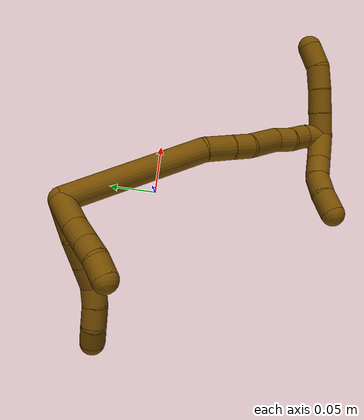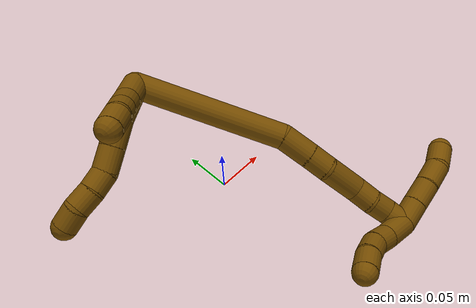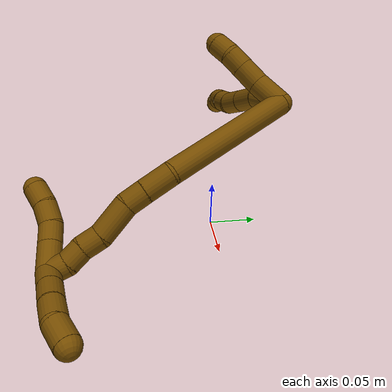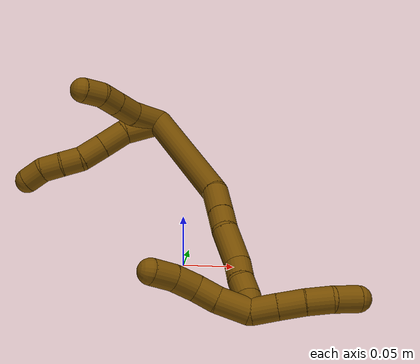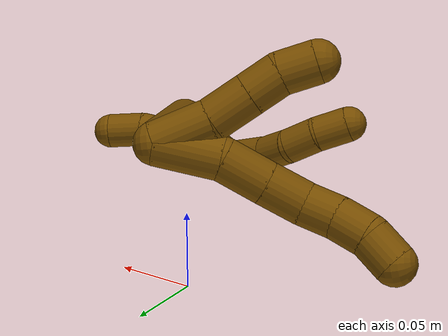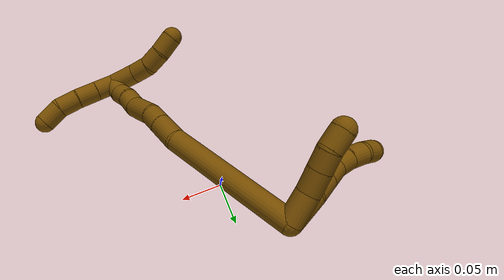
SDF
<sdf version="1.7">
 <world name="default">
  <model name="12">
   <static>0</static>
   <link name="12">
    <collision name="collision-cylinder-e_1_2_8">
     <pose>-0.007347 -0.002799 0.017239 0.160949 -0.398202 -0.032543</pose>
     <geometry><cylinder><radius>0.0125</radius><length>0.037894</length></cylinder></geometry>
     <surface>
      <friction><ode><mu>1.16</mu><mu2>1.16</mu2><slip1>0</slip1><slip2>0</slip2></ode></friction>
      <contact><ode><kp>1e+06</kp><kd>1</kd><max_vel>0</max_vel><min_depth>0.001</min_depth></ode></contact>
     </surface>
    </collision>
    <visual name="visual-cylinder-e_1_2_8">
     <pose>-0.007347 -0.002799 0.017239 0.160949 -0.398202 -0.032543</pose>
     <geometry><cylinder><radius>0.0125</radius><length>0.037894</length></cylinder></geometry>
     <material><ambient>0.466667 0.301961 0 1</ambient></material>
    </visual>
    <collision name="collision-cylinder-e_2_8_9">
     <pose>-0.023451 -0.007887 0.044532 0.223847 -0.704052 -0.082523</pose>
     <geometry><cylinder><radius>0.0125</radius><length>0.027057</length></cylinder></geometry>
     <surface>
      <friction><ode><mu>1.16</mu><mu2>1.16</mu2><slip1>0</slip1><slip2>0</slip2></ode></friction>
      <contact><ode><kp>1e+06</kp><kd>1</kd><max_vel>0</max_vel><min_depth>0.001</min_depth></ode></contact>
     </surface>
    </collision>
    <visual name="visual-cylinder-e_2_8_9">
     <pose>-0.023451 -0.007887 0.044532 0.223847 -0.704052 -0.082523</pose>
     <geometry><cylinder><radius>0.0125</radius><length>0.027057</length></cylinder></geometry>
     <material><ambient>0.466667 0.301961 0 1</ambient></material>
    </visual>
    <collision name="collision-cylinder-e_3_9_10">
     <pose>-0.039916 -0.012231 0.063769 0.220218 -0.686289 -0.078958</pose>
     <geometry><cylinder><radius>0.0125</radius><length>0.024328</length></cylinder></geometry>
     <surface>
      <friction><ode><mu>1.16</mu><mu2>1.16</mu2><slip1>0</slip1><slip2>0</slip2></ode></friction>
      <contact><ode><kp>1e+06</kp><kd>1</kd><max_vel>0</max_vel><min_depth>0.001</min_depth></ode></contact>
     </surface>
    </collision>
    <visual name="visual-cylinder-e_3_9_10">
     <pose>-0.039916 -0.012231 0.063769 0.220218 -0.686289 -0.078958</pose>
     <geometry><cylinder><radius>0.0125</radius><length>0.024328</length></cylinder></geometry>
     <material><ambient>0.466667 0.301961 0 1</ambient></material>
    </visual>
    <collision name="collision-cylinder-e_4_10_11">
     <pose>-0.052397 -0.01342 0.081701 -0.098711 -0.497363 0.025086</pose>
     <geometry><cylinder><radius>0.0125</radius><length>0.020007</length></cylinder></geometry>
     <surface>
      <friction><ode><mu>1.16</mu><mu2>1.16</mu2><slip1>0</slip1><slip2>0</slip2></ode></friction>
      <contact><ode><kp>1e+06</kp><kd>1</kd><max_vel>0</max_vel><min_depth>0.001</min_depth></ode></contact>
     </surface>
    </collision>
    <visual name="visual-cylinder-e_4_10_11">
     <pose>-0.052397 -0.01342 0.081701 -0.098711 -0.497363 0.025086</pose>
     <geometry><cylinder><radius>0.0125</radius><length>0.020007</length></cylinder></geometry>
     <material><ambient>0.466667 0.301961 0 1</ambient></material>
    </visual>
    <collision name="collision-cylinder-e_5_11_12">
     <pose>-0.062527 -0.010089 0.098839 -0.285717 -0.549773 0.081088</pose>
     <geometry><cylinder><radius>0.0125</radius><length>0.02051</length></cylinder></geometry>
     <surface>
      <friction><ode><mu>1.16</mu><mu2>1.16</mu2><slip1>0</slip1><slip2>0</slip2></ode></friction>
      <contact><ode><kp>1e+06</kp><kd>1</kd><max_vel>0</max_vel><min_depth>0.001</min_depth></ode></contact>
     </surface>
    </collision>
    <visual name="visual-cylinder-e_5_11_12">
     <pose>-0.062527 -0.010089 0.098839 -0.285717 -0.549773 0.081088</pose>
     <geometry><cylinder><radius>0.0125</radius><length>0.02051</length></cylinder></geometry>
     <material><ambient>0.466667 0.301961 0 1</ambient></material>
    </visual>
    <collision name="collision-cylinder-e_6_12_6">
     <pose>-0.075682 -0.005427 0.113265 -0.349163 -0.881589 0.16603</pose>
     <geometry><cylinder><radius>0.0125</radius><length>0.020205</length></cylinder></geometry>
     <surface>
      <friction><ode><mu>1.16</mu><mu2>1.16</mu2><slip1>0</slip1><slip2>0</slip2></ode></friction>
      <contact><ode><kp>1e+06</kp><kd>1</kd><max_vel>0</max_vel><min_depth>0.001</min_depth></ode></contact>
     </surface>
    </collision>
    <visual name="visual-cylinder-e_6_12_6">
     <pose>-0.075682 -0.005427 0.113265 -0.349163 -0.881589 0.16603</pose>
     <geometry><cylinder><radius>0.0125</radius><length>0.020205</length></cylinder></geometry>
     <material><ambient>0.466667 0.301961 0 1</ambient></material>
    </visual>
    <collision name="collision-cylinder-e_1_2_13">
     <pose>0.003392 -0.004656 0.015639 0.289345 0.204973 0.029965</pose>
     <geometry><cylinder><radius>0.0125</radius><length>0.033333</length></cylinder></geometry>
     <surface>
      <friction><ode><mu>1.16</mu><mu2>1.16</mu2><slip1>0</slip1><slip2>0</slip2></ode></friction>
      <contact><ode><kp>1e+06</kp><kd>1</kd><max_vel>0</max_vel><min_depth>0.001</min_depth></ode></contact>
     </surface>
    </collision>
    <visual name="visual-cylinder-e_1_2_13">
     <pose>0.003392 -0.004656 0.015639 0.289345 0.204973 0.029965</pose>
     <geometry><cylinder><radius>0.0125</radius><length>0.033333</length></cylinder></geometry>
     <material><ambient>0.466667 0.301961 0 1</ambient></material>
    </visual>
    <collision name="collision-cylinder-e_2_13_14">
     <pose>0.011589 -0.013366 0.0421 0.358493 0.394025 0.072301</pose>
     <geometry><cylinder><radius>0.0125</radius><length>0.025032</length></cylinder></geometry>
     <surface>
      <friction><ode><mu>1.16</mu><mu2>1.16</mu2><slip1>0</slip1><slip2>0</slip2></ode></friction>
      <contact><ode><kp>1e+06</kp><kd>1</kd><max_vel>0</max_vel><min_depth>0.001</min_depth></ode></contact>
     </surface>
    </collision>
    <visual name="visual-cylinder-e_2_13_14">
     <pose>0.011589 -0.013366 0.0421 0.358493 0.394025 0.072301</pose>
     <geometry><cylinder><radius>0.0125</radius><length>0.025032</length></cylinder></geometry>
     <material><ambient>0.466667 0.301961 0 1</ambient></material>
    </visual>
    <collision name="collision-cylinder-e_3_14_15">
     <pose>0.020277 -0.020719 0.061627 0.362139 0.395164 0.073268</pose>
     <geometry><cylinder><radius>0.0125</radius><length>0.020171</length></cylinder></geometry>
     <surface>
      <friction><ode><mu>1.16</mu><mu2>1.16</mu2><slip1>0</slip1><slip2>0</slip2></ode></friction>
      <contact><ode><kp>1e+06</kp><kd>1</kd><max_vel>0</max_vel><min_depth>0.001</min_depth></ode></contact>
     </surface>
    </collision>
    <visual name="visual-cylinder-e_3_14_15">
     <pose>0.020277 -0.020719 0.061627 0.362139 0.395164 0.073268</pose>
     <geometry><cylinder><radius>0.0125</radius><length>0.020171</length></cylinder></geometry>
     <material><ambient>0.466667 0.301961 0 1</ambient></material>
    </visual>
    <collision name="collision-cylinder-e_4_15_5">
     <pose>0.025502 -0.026561 0.080671 0.241274 0.125407 0.015222</pose>
     <geometry><cylinder><radius>0.0125</radius><length>0.021465</length></cylinder></geometry>
     <surface>
      <friction><ode><mu>1.16</mu><mu2>1.16</mu2><slip1>0</slip1><slip2>0</slip2></ode></friction>
      <contact><ode><kp>1e+06</kp><kd>1</kd><max_vel>0</max_vel><min_depth>0.001</min_depth></ode></contact>
     </surface>
    </collision>
    <visual name="visual-cylinder-e_4_15_5">
     <pose>0.025502 -0.026561 0.080671 0.241274 0.125407 0.015222</pose>
     <geometry><cylinder><radius>0.0125</radius><length>0.021465</length></cylinder></geometry>
     <material><ambient>0.466667 0.301961 0 1</ambient></material>
    </visual>
    <collision name="collision-cylinder-e_1_2_16">
     <pose>-0.008743 -0.071411 -0.016704 1.80058 -0.118649 -0.149502</pose>
     <geometry><cylinder><radius>0.0125</radius><length>0.147715</length></cylinder></geometry>
     <surface>
      <friction><ode><mu>1.16</mu><mu2>1.16</mu2><slip1>0</slip1><slip2>0</slip2></ode></friction>
      <contact><ode><kp>1e+06</kp><kd>1</kd><max_vel>0</max_vel><min_depth>0.001</min_depth></ode></contact>
     </surface>
    </collision>
    <visual name="visual-cylinder-e_1_2_16">
     <pose>-0.008743 -0.071411 -0.016704 1.80058 -0.118649 -0.149502</pose>
     <geometry><cylinder><radius>0.0125</radius><length>0.147715</length></cylinder></geometry>
     <material><ambient>0.466667 0.301961 0 1</ambient></material>
    </visual>
    <collision name="collision-cylinder-e_2_16_17">
     <pose>-0.023053 -0.157259 -0.034556 1.65013 -0.367005 -0.396578</pose>
     <geometry><cylinder><radius>0.0125</radius><length>0.031031</length></cylinder></geometry>
     <surface>
      <friction><ode><mu>1.16</mu><mu2>1.16</mu2><slip1>0</slip1><slip2>0</slip2></ode></friction>
      <contact><ode><kp>1e+06</kp><kd>1</kd><max_vel>0</max_vel><min_depth>0.001</min_depth></ode></contact>
     </surface>
    </collision>
    <visual name="visual-cylinder-e_2_16_17">
     <pose>-0.023053 -0.157259 -0.034556 1.65013 -0.367005 -0.396578</pose>
     <geometry><cylinder><radius>0.0125</radius><length>0.031031</length></cylinder></geometry>
     <material><ambient>0.466667 0.301961 0 1</ambient></material>
    </visual>
    <collision name="collision-cylinder-e_3_17_18">
     <pose>-0.032774 -0.181737 -0.036544 1.65425 -0.390999 -0.424098</pose>
     <geometry><cylinder><radius>0.0125</radius><length>0.021799</length></cylinder></geometry>
     <surface>
      <friction><ode><mu>1.16</mu><mu2>1.16</mu2><slip1>0</slip1><slip2>0</slip2></ode></friction>
      <contact><ode><kp>1e+06</kp><kd>1</kd><max_vel>0</max_vel><min_depth>0.001</min_depth></ode></contact>
     </surface>
    </collision>
    <visual name="visual-cylinder-e_3_17_18">
     <pose>-0.032774 -0.181737 -0.036544 1.65425 -0.390999 -0.424098</pose>
     <geometry><cylinder><radius>0.0125</radius><length>0.021799</length></cylinder></geometry>
     <material><ambient>0.466667 0.301961 0 1</ambient></material>
    </visual>
    <collision name="collision-cylinder-e_4_18_19">
     <pose>-0.046877 -0.207133 -0.042785 1.90905 -0.548639 -0.756374</pose>
     <geometry><cylinder><radius>0.0125</radius><length>0.038152</length></cylinder></geometry>
     <surface>
      <friction><ode><mu>1.16</mu><mu2>1.16</mu2><slip1>0</slip1><slip2>0</slip2></ode></friction>
      <contact><ode><kp>1e+06</kp><kd>1</kd><max_vel>0</max_vel><min_depth>0.001</min_depth></ode></contact>
     </surface>
    </collision>
    <visual name="visual-cylinder-e_4_18_19">
     <pose>-0.046877 -0.207133 -0.042785 1.90905 -0.548639 -0.756374</pose>
     <geometry><cylinder><radius>0.0125</radius><length>0.038152</length></cylinder></geometry>
     <material><ambient>0.466667 0.301961 0 1</ambient></material>
    </visual>
    <collision name="collision-cylinder-e_5_19_20">
     <pose>-0.060678 -0.232153 -0.048549 1.6083 -0.379073 -0.393197</pose>
     <geometry><cylinder><radius>0.0125</radius><length>0.020823</length></cylinder></geometry>
     <surface>
      <friction><ode><mu>1.16</mu><mu2>1.16</mu2><slip1>0</slip1><slip2>0</slip2></ode></friction>
      <contact><ode><kp>1e+06</kp><kd>1</kd><max_vel>0</max_vel><min_depth>0.001</min_depth></ode></contact>
     </surface>
    </collision>
    <visual name="visual-cylinder-e_5_19_20">
     <pose>-0.060678 -0.232153 -0.048549 1.6083 -0.379073 -0.393197</pose>
     <geometry><cylinder><radius>0.0125</radius><length>0.020823</length></cylinder></geometry>
     <material><ambient>0.466667 0.301961 0 1</ambient></material>
    </visual>
    <collision name="collision-cylinder-e_6_20_21">
     <pose>-0.069088 -0.250412 -0.051398 1.85244 -0.471135 -0.618165</pose>
     <geometry><cylinder><radius>0.0125</radius><length>0.02008</length></cylinder></geometry>
     <surface>
      <friction><ode><mu>1.16</mu><mu2>1.16</mu2><slip1>0</slip1><slip2>0</slip2></ode></friction>
      <contact><ode><kp>1e+06</kp><kd>1</kd><max_vel>0</max_vel><min_depth>0.001</min_depth></ode></contact>
     </surface>
    </collision>
    <visual name="visual-cylinder-e_6_20_21">
     <pose>-0.069088 -0.250412 -0.051398 1.85244 -0.471135 -0.618165</pose>
     <geometry><cylinder><radius>0.0125</radius><length>0.02008</length></cylinder></geometry>
     <material><ambient>0.466667 0.301961 0 1</ambient></material>
    </visual>
    <collision name="collision-cylinder-e_7_21_1">
     <pose>-0.076564 -0.268772 -0.053511 1.53265 -0.290194 -0.279474</pose>
     <geometry><cylinder><radius>0.0125</radius><length>0.020399</length></cylinder></geometry>
     <surface>
      <friction><ode><mu>1.16</mu><mu2>1.16</mu2><slip1>0</slip1><slip2>0</slip2></ode></friction>
      <contact><ode><kp>1e+06</kp><kd>1</kd><max_vel>0</max_vel><min_depth>0.001</min_depth></ode></contact>
     </surface>
    </collision>
    <visual name="visual-cylinder-e_7_21_1">
     <pose>-0.076564 -0.268772 -0.053511 1.53265 -0.290194 -0.279474</pose>
     <geometry><cylinder><radius>0.0125</radius><length>0.020399</length></cylinder></geometry>
     <material><ambient>0.466667 0.301961 0 1</ambient></material>
    </visual>
    <collision name="collision-cylinder-e_1_1_22">
     <pose>-0.078168 -0.273319 -0.038351 -0.33926 0.083634 -0.014333</pose>
     <geometry><cylinder><radius>0.0125</radius><length>0.031474</length></cylinder></geometry>
     <surface>
      <friction><ode><mu>1.16</mu><mu2>1.16</mu2><slip1>0</slip1><slip2>0</slip2></ode></friction>
      <contact><ode><kp>1e+06</kp><kd>1</kd><max_vel>0</max_vel><min_depth>0.001</min_depth></ode></contact>
     </surface>
    </collision>
    <visual name="visual-cylinder-e_1_1_22">
     <pose>-0.078168 -0.273319 -0.038351 -0.33926 0.083634 -0.014333</pose>
     <geometry><cylinder><radius>0.0125</radius><length>0.031474</length></cylinder></geometry>
     <material><ambient>0.466667 0.301961 0 1</ambient></material>
    </visual>
    <collision name="collision-cylinder-e_2_22_23">
     <pose>-0.074323 -0.264332 -0.013656 -0.363441 0.234289 -0.043241</pose>
     <geometry><cylinder><radius>0.0125</radius><length>0.021793</length></cylinder></geometry>
     <surface>
      <friction><ode><mu>1.16</mu><mu2>1.16</mu2><slip1>0</slip1><slip2>0</slip2></ode></friction>
      <contact><ode><kp>1e+06</kp><kd>1</kd><max_vel>0</max_vel><min_depth>0.001</min_depth></ode></contact>
     </surface>
    </collision>
    <visual name="visual-cylinder-e_2_22_23">
     <pose>-0.074323 -0.264332 -0.013656 -0.363441 0.234289 -0.043241</pose>
     <geometry><cylinder><radius>0.0125</radius><length>0.021793</length></cylinder></geometry>
     <material><ambient>0.466667 0.301961 0 1</ambient></material>
    </visual>
    <collision name="collision-cylinder-e_3_23_24">
     <pose>-0.068715 -0.260218 0.007434 -0.030958 0.268468 -0.004181</pose>
     <geometry><cylinder><radius>0.0125</radius><length>0.02321</length></cylinder></geometry>
     <surface>
      <friction><ode><mu>1.16</mu><mu2>1.16</mu2><slip1>0</slip1><slip2>0</slip2></ode></friction>
      <contact><ode><kp>1e+06</kp><kd>1</kd><max_vel>0</max_vel><min_depth>0.001</min_depth></ode></contact>
     </surface>
    </collision>
    <visual name="visual-cylinder-e_3_23_24">
     <pose>-0.068715 -0.260218 0.007434 -0.030958 0.268468 -0.004181</pose>
     <geometry><cylinder><radius>0.0125</radius><length>0.02321</length></cylinder></geometry>
     <material><ambient>0.466667 0.301961 0 1</ambient></material>
    </visual>
    <collision name="collision-cylinder-e_4_24_4">
     <pose>-0.063852 -0.261514 0.030127 0.141755 0.152385 0.01084</pose>
     <geometry><cylinder><radius>0.0125</radius><length>0.023523</length></cylinder></geometry>
     <surface>
      <friction><ode><mu>1.16</mu><mu2>1.16</mu2><slip1>0</slip1><slip2>0</slip2></ode></friction>
      <contact><ode><kp>1e+06</kp><kd>1</kd><max_vel>0</max_vel><min_depth>0.001</min_depth></ode></contact>
     </surface>
    </collision>
    <visual name="visual-cylinder-e_4_24_4">
     <pose>-0.063852 -0.261514 0.030127 0.141755 0.152385 0.01084</pose>
     <geometry><cylinder><radius>0.0125</radius><length>0.023523</length></cylinder></geometry>
     <material><ambient>0.466667 0.301961 0 1</ambient></material>
    </visual>
    <collision name="collision-cylinder-e_1_1_25">
     <pose>-0.074393 -0.280256 -0.064288 2.98867 0.423813 2.4574</pose>
     <geometry><cylinder><radius>0.0125</radius><length>0.024751</length></cylinder></geometry>
     <surface>
      <friction><ode><mu>1.16</mu><mu2>1.16</mu2><slip1>0</slip1><slip2>0</slip2></ode></friction>
      <contact><ode><kp>1e+06</kp><kd>1</kd><max_vel>0</max_vel><min_depth>0.001</min_depth></ode></contact>
     </surface>
    </collision>
    <visual name="visual-cylinder-e_1_1_25">
     <pose>-0.074393 -0.280256 -0.064288 2.98867 0.423813 2.4574</pose>
     <geometry><cylinder><radius>0.0125</radius><length>0.024751</length></cylinder></geometry>
     <material><ambient>0.466667 0.301961 0 1</ambient></material>
    </visual>
    <collision name="collision-cylinder-e_2_25_26">
     <pose>-0.064287 -0.283845 -0.086909 2.97997 0.407471 2.39443</pose>
     <geometry><cylinder><radius>0.0125</radius><length>0.025319</length></cylinder></geometry>
     <surface>
      <friction><ode><mu>1.16</mu><mu2>1.16</mu2><slip1>0</slip1><slip2>0</slip2></ode></friction>
      <contact><ode><kp>1e+06</kp><kd>1</kd><max_vel>0</max_vel><min_depth>0.001</min_depth></ode></contact>
     </surface>
    </collision>
    <visual name="visual-cylinder-e_2_25_26">
     <pose>-0.064287 -0.283845 -0.086909 2.97997 0.407471 2.39443</pose>
     <geometry><cylinder><radius>0.0125</radius><length>0.025319</length></cylinder></geometry>
     <material><ambient>0.466667 0.301961 0 1</ambient></material>
    </visual>
    <collision name="collision-cylinder-e_3_26_27">
     <pose>-0.055316 -0.287144 -0.110239 3.02164 0.319676 2.42846</pose>
     <geometry><cylinder><radius>0.0125</radius><length>0.025164</length></cylinder></geometry>
     <surface>
      <friction><ode><mu>1.16</mu><mu2>1.16</mu2><slip1>0</slip1><slip2>0</slip2></ode></friction>
      <contact><ode><kp>1e+06</kp><kd>1</kd><max_vel>0</max_vel><min_depth>0.001</min_depth></ode></contact>
     </surface>
    </collision>
    <visual name="visual-cylinder-e_3_26_27">
     <pose>-0.055316 -0.287144 -0.110239 3.02164 0.319676 2.42846</pose>
     <geometry><cylinder><radius>0.0125</radius><length>0.025164</length></cylinder></geometry>
     <material><ambient>0.466667 0.301961 0 1</ambient></material>
    </visual>
    <collision name="collision-cylinder-e_4_27_3">
     <pose>-0.049893 -0.286863 -0.134274 -3.002 0.118874 -1.4104</pose>
     <geometry><cylinder><radius>0.0125</radius><length>0.024765</length></cylinder></geometry>
     <surface>
      <friction><ode><mu>1.16</mu><mu2>1.16</mu2><slip1>0</slip1><slip2>0</slip2></ode></friction>
      <contact><ode><kp>1e+06</kp><kd>1</kd><max_vel>0</max_vel><min_depth>0.001</min_depth></ode></contact>
     </surface>
    </collision>
    <visual name="visual-cylinder-e_4_27_3">
     <pose>-0.049893 -0.286863 -0.134274 -3.002 0.118874 -1.4104</pose>
     <geometry><cylinder><radius>0.0125</radius><length>0.024765</length></cylinder></geometry>
     <material><ambient>0.466667 0.301961 0 1</ambient></material>
    </visual>
    <collision name="collision-sphere-3">
     <pose>-0.048425 -0.285152 -0.146449 0 -0 0</pose>
     <geometry><sphere><radius>0.0125</radius></sphere></geometry>
     <surface>
      <friction><ode><mu>1.16</mu><mu2>1.16</mu2><slip1>0</slip1><slip2>0</slip2></ode></friction>
      <contact><ode><kp>1e+06</kp><kd>1</kd><max_vel>0</max_vel><min_depth>0.001</min_depth></ode></contact>
     </surface>
    </collision>
    <visual name="visual-sphere-3">
     <pose>-0.048425 -0.285152 -0.146449 0 -0 0</pose>
     <geometry><sphere><radius>0.0125</radius></sphere></geometry>
     <material><ambient>0.466667 0.301961 0 1</ambient></material>
    </visual>
    <collision name="collision-sphere-27">
     <pose>-0.051362 -0.288574 -0.122098 0 -0 0</pose>
     <geometry><sphere><radius>0.0125</radius></sphere></geometry>
     <surface>
      <friction><ode><mu>1.16</mu><mu2>1.16</mu2><slip1>0</slip1><slip2>0</slip2></ode></friction>
      <contact><ode><kp>1e+06</kp><kd>1</kd><max_vel>0</max_vel><min_depth>0.001</min_depth></ode></contact>
     </surface>
    </collision>
    <visual name="visual-sphere-27">
     <pose>-0.051362 -0.288574 -0.122098 0 -0 0</pose>
     <geometry><sphere><radius>0.0125</radius></sphere></geometry>
     <material><ambient>0.466667 0.301961 0 1</ambient></material>
    </visual>
    <collision name="collision-sphere-26">
     <pose>-0.05927 -0.285715 -0.098381 0 -0 0</pose>
     <geometry><sphere><radius>0.0125</radius></sphere></geometry>
     <surface>
      <friction><ode><mu>1.16</mu><mu2>1.16</mu2><slip1>0</slip1><slip2>0</slip2></ode></friction>
      <contact><ode><kp>1e+06</kp><kd>1</kd><max_vel>0</max_vel><min_depth>0.001</min_depth></ode></contact>
     </surface>
    </collision>
    <visual name="visual-sphere-26">
     <pose>-0.05927 -0.285715 -0.098381 0 -0 0</pose>
     <geometry><sphere><radius>0.0125</radius></sphere></geometry>
     <material><ambient>0.466667 0.301961 0 1</ambient></material>
    </visual>
    <collision name="collision-sphere-25">
     <pose>-0.069303 -0.281974 -0.075437 0 -0 0</pose>
     <geometry><sphere><radius>0.0125</radius></sphere></geometry>
     <surface>
      <friction><ode><mu>1.16</mu><mu2>1.16</mu2><slip1>0</slip1><slip2>0</slip2></ode></friction>
      <contact><ode><kp>1e+06</kp><kd>1</kd><max_vel>0</max_vel><min_depth>0.001</min_depth></ode></contact>
     </surface>
    </collision>
    <visual name="visual-sphere-25">
     <pose>-0.069303 -0.281974 -0.075437 0 -0 0</pose>
     <geometry><sphere><radius>0.0125</radius></sphere></geometry>
     <material><ambient>0.466667 0.301961 0 1</ambient></material>
    </visual>
    <collision name="collision-sphere-4">
     <pose>-0.062066 -0.263157 0.041635 0 -0 0</pose>
     <geometry><sphere><radius>0.0125</radius></sphere></geometry>
     <surface>
      <friction><ode><mu>1.16</mu><mu2>1.16</mu2><slip1>0</slip1><slip2>0</slip2></ode></friction>
      <contact><ode><kp>1e+06</kp><kd>1</kd><max_vel>0</max_vel><min_depth>0.001</min_depth></ode></contact>
     </surface>
    </collision>
    <visual name="visual-sphere-4">
     <pose>-0.062066 -0.263157 0.041635 0 -0 0</pose>
     <geometry><sphere><radius>0.0125</radius></sphere></geometry>
     <material><ambient>0.466667 0.301961 0 1</ambient></material>
    </visual>
    <collision name="collision-sphere-24">
     <pose>-0.065637 -0.259872 0.018618 0 -0 0</pose>
     <geometry><sphere><radius>0.0125</radius></sphere></geometry>
     <surface>
      <friction><ode><mu>1.16</mu><mu2>1.16</mu2><slip1>0</slip1><slip2>0</slip2></ode></friction>
      <contact><ode><kp>1e+06</kp><kd>1</kd><max_vel>0</max_vel><min_depth>0.001</min_depth></ode></contact>
     </surface>
    </collision>
    <visual name="visual-sphere-24">
     <pose>-0.065637 -0.259872 0.018618 0 -0 0</pose>
     <geometry><sphere><radius>0.0125</radius></sphere></geometry>
     <material><ambient>0.466667 0.301961 0 1</ambient></material>
    </visual>
    <collision name="collision-sphere-23">
     <pose>-0.071794 -0.260564 -0.00375 0 -0 0</pose>
     <geometry><sphere><radius>0.0125</radius></sphere></geometry>
     <surface>
      <friction><ode><mu>1.16</mu><mu2>1.16</mu2><slip1>0</slip1><slip2>0</slip2></ode></friction>
      <contact><ode><kp>1e+06</kp><kd>1</kd><max_vel>0</max_vel><min_depth>0.001</min_depth></ode></contact>
     </surface>
    </collision>
    <visual name="visual-sphere-23">
     <pose>-0.071794 -0.260564 -0.00375 0 -0 0</pose>
     <geometry><sphere><radius>0.0125</radius></sphere></geometry>
     <material><ambient>0.466667 0.301961 0 1</ambient></material>
    </visual>
    <collision name="collision-sphere-22">
     <pose>-0.076853 -0.2681 -0.023562 0 -0 0</pose>
     <geometry><sphere><radius>0.0125</radius></sphere></geometry>
     <surface>
      <friction><ode><mu>1.16</mu><mu2>1.16</mu2><slip1>0</slip1><slip2>0</slip2></ode></friction>
      <contact><ode><kp>1e+06</kp><kd>1</kd><max_vel>0</max_vel><min_depth>0.001</min_depth></ode></contact>
     </surface>
    </collision>
    <visual name="visual-sphere-22">
     <pose>-0.076853 -0.2681 -0.023562 0 -0 0</pose>
     <geometry><sphere><radius>0.0125</radius></sphere></geometry>
     <material><ambient>0.466667 0.301961 0 1</ambient></material>
    </visual>
    <collision name="collision-sphere-1">
     <pose>-0.079482 -0.278538 -0.053139 0 -0 0</pose>
     <geometry><sphere><radius>0.0125</radius></sphere></geometry>
     <surface>
      <friction><ode><mu>1.16</mu><mu2>1.16</mu2><slip1>0</slip1><slip2>0</slip2></ode></friction>
      <contact><ode><kp>1e+06</kp><kd>1</kd><max_vel>0</max_vel><min_depth>0.001</min_depth></ode></contact>
     </surface>
    </collision>
    <visual name="visual-sphere-1">
     <pose>-0.079482 -0.278538 -0.053139 0 -0 0</pose>
     <geometry><sphere><radius>0.0125</radius></sphere></geometry>
     <material><ambient>0.466667 0.301961 0 1</ambient></material>
    </visual>
    <collision name="collision-sphere-21">
     <pose>-0.073645 -0.259006 -0.053884 0 -0 0</pose>
     <geometry><sphere><radius>0.0125</radius></sphere></geometry>
     <surface>
      <friction><ode><mu>1.16</mu><mu2>1.16</mu2><slip1>0</slip1><slip2>0</slip2></ode></friction>
      <contact><ode><kp>1e+06</kp><kd>1</kd><max_vel>0</max_vel><min_depth>0.001</min_depth></ode></contact>
     </surface>
    </collision>
    <visual name="visual-sphere-21">
     <pose>-0.073645 -0.259006 -0.053884 0 -0 0</pose>
     <geometry><sphere><radius>0.0125</radius></sphere></geometry>
     <material><ambient>0.466667 0.301961 0 1</ambient></material>
    </visual>
    <collision name="collision-sphere-12">
     <pose>-0.067886 -0.007625 0.107228 0 -0 0</pose>
     <geometry><sphere><radius>0.0125</radius></sphere></geometry>
     <surface>
      <friction><ode><mu>1.16</mu><mu2>1.16</mu2><slip1>0</slip1><slip2>0</slip2></ode></friction>
      <contact><ode><kp>1e+06</kp><kd>1</kd><max_vel>0</max_vel><min_depth>0.001</min_depth></ode></contact>
     </surface>
    </collision>
    <visual name="visual-sphere-12">
     <pose>-0.067886 -0.007625 0.107228 0 -0 0</pose>
     <geometry><sphere><radius>0.0125</radius></sphere></geometry>
     <material><ambient>0.466667 0.301961 0 1</ambient></material>
    </visual>
    <collision name="collision-sphere-11">
     <pose>-0.057169 -0.012554 0.090449 0 -0 0</pose>
     <geometry><sphere><radius>0.0125</radius></sphere></geometry>
     <surface>
      <friction><ode><mu>1.16</mu><mu2>1.16</mu2><slip1>0</slip1><slip2>0</slip2></ode></friction>
      <contact><ode><kp>1e+06</kp><kd>1</kd><max_vel>0</max_vel><min_depth>0.001</min_depth></ode></contact>
     </surface>
    </collision>
    <visual name="visual-sphere-11">
     <pose>-0.057169 -0.012554 0.090449 0 -0 0</pose>
     <geometry><sphere><radius>0.0125</radius></sphere></geometry>
     <material><ambient>0.466667 0.301961 0 1</ambient></material>
    </visual>
    <collision name="collision-sphere-10">
     <pose>-0.047624 -0.014287 0.072952 0 -0 0</pose>
     <geometry><sphere><radius>0.0125</radius></sphere></geometry>
     <surface>
      <friction><ode><mu>1.16</mu><mu2>1.16</mu2><slip1>0</slip1><slip2>0</slip2></ode></friction>
      <contact><ode><kp>1e+06</kp><kd>1</kd><max_vel>0</max_vel><min_depth>0.001</min_depth></ode></contact>
     </surface>
    </collision>
    <visual name="visual-sphere-10">
     <pose>-0.047624 -0.014287 0.072952 0 -0 0</pose>
     <geometry><sphere><radius>0.0125</radius></sphere></geometry>
     <material><ambient>0.466667 0.301961 0 1</ambient></material>
    </visual>
    <collision name="collision-sphere-9">
     <pose>-0.032208 -0.010176 0.054587 0 -0 0</pose>
     <geometry><sphere><radius>0.0125</radius></sphere></geometry>
     <surface>
      <friction><ode><mu>1.16</mu><mu2>1.16</mu2><slip1>0</slip1><slip2>0</slip2></ode></friction>
      <contact><ode><kp>1e+06</kp><kd>1</kd><max_vel>0</max_vel><min_depth>0.001</min_depth></ode></contact>
     </surface>
    </collision>
    <visual name="visual-sphere-9">
     <pose>-0.032208 -0.010176 0.054587 0 -0 0</pose>
     <geometry><sphere><radius>0.0125</radius></sphere></geometry>
     <material><ambient>0.466667 0.301961 0 1</ambient></material>
    </visual>
    <collision name="collision-sphere-2">
     <geometry><sphere><radius>0.0125</radius></sphere></geometry>
     <surface>
      <friction><ode><mu>1.16</mu><mu2>1.16</mu2><slip1>0</slip1><slip2>0</slip2></ode></friction>
      <contact><ode><kp>1e+06</kp><kd>1</kd><max_vel>0</max_vel><min_depth>0.001</min_depth></ode></contact>
     </surface>
    </collision>
    <visual name="visual-sphere-2">
     <geometry><sphere><radius>0.0125</radius></sphere></geometry>
     <material><ambient>0.466667 0.301961 0 1</ambient></material>
    </visual>
    <collision name="collision-sphere-19">
     <pose>-0.056825 -0.222488 -0.048186 0 -0 0</pose>
     <geometry><sphere><radius>0.0125</radius></sphere></geometry>
     <surface>
      <friction><ode><mu>1.16</mu><mu2>1.16</mu2><slip1>0</slip1><slip2>0</slip2></ode></friction>
      <contact><ode><kp>1e+06</kp><kd>1</kd><max_vel>0</max_vel><min_depth>0.001</min_depth></ode></contact>
     </surface>
    </collision>
    <visual name="visual-sphere-19">
     <pose>-0.056825 -0.222488 -0.048186 0 -0 0</pose>
     <geometry><sphere><radius>0.0125</radius></sphere></geometry>
     <material><ambient>0.466667 0.301961 0 1</ambient></material>
    </visual>
    <collision name="collision-sphere-8">
     <pose>-0.014694 -0.005598 0.034478 0 -0 0</pose>
     <geometry><sphere><radius>0.0125</radius></sphere></geometry>
     <surface>
      <friction><ode><mu>1.16</mu><mu2>1.16</mu2><slip1>0</slip1><slip2>0</slip2></ode></friction>
      <contact><ode><kp>1e+06</kp><kd>1</kd><max_vel>0</max_vel><min_depth>0.001</min_depth></ode></contact>
     </surface>
    </collision>
    <visual name="visual-sphere-8">
     <pose>-0.014694 -0.005598 0.034478 0 -0 0</pose>
     <geometry><sphere><radius>0.0125</radius></sphere></geometry>
     <material><ambient>0.466667 0.301961 0 1</ambient></material>
    </visual>
    <collision name="collision-sphere-6">
     <pose>-0.083479 -0.003229 0.119301 0 -0 0</pose>
     <geometry><sphere><radius>0.0125</radius></sphere></geometry>
     <surface>
      <friction><ode><mu>1.16</mu><mu2>1.16</mu2><slip1>0</slip1><slip2>0</slip2></ode></friction>
      <contact><ode><kp>1e+06</kp><kd>1</kd><max_vel>0</max_vel><min_depth>0.001</min_depth></ode></contact>
     </surface>
    </collision>
    <visual name="visual-sphere-6">
     <pose>-0.083479 -0.003229 0.119301 0 -0 0</pose>
     <geometry><sphere><radius>0.0125</radius></sphere></geometry>
     <material><ambient>0.466667 0.301961 0 1</ambient></material>
    </visual>
    <collision name="collision-sphere-13">
     <pose>0.006785 -0.009312 0.031278 0 -0 0</pose>
     <geometry><sphere><radius>0.0125</radius></sphere></geometry>
     <surface>
      <friction><ode><mu>1.16</mu><mu2>1.16</mu2><slip1>0</slip1><slip2>0</slip2></ode></friction>
      <contact><ode><kp>1e+06</kp><kd>1</kd><max_vel>0</max_vel><min_depth>0.001</min_depth></ode></contact>
     </surface>
    </collision>
    <visual name="visual-sphere-13">
     <pose>0.006785 -0.009312 0.031278 0 -0 0</pose>
     <geometry><sphere><radius>0.0125</radius></sphere></geometry>
     <material><ambient>0.466667 0.301961 0 1</ambient></material>
    </visual>
    <collision name="collision-sphere-14">
     <pose>0.016394 -0.017421 0.052922 0 -0 0</pose>
     <geometry><sphere><radius>0.0125</radius></sphere></geometry>
     <surface>
      <friction><ode><mu>1.16</mu><mu2>1.16</mu2><slip1>0</slip1><slip2>0</slip2></ode></friction>
      <contact><ode><kp>1e+06</kp><kd>1</kd><max_vel>0</max_vel><min_depth>0.001</min_depth></ode></contact>
     </surface>
    </collision>
    <visual name="visual-sphere-14">
     <pose>0.016394 -0.017421 0.052922 0 -0 0</pose>
     <geometry><sphere><radius>0.0125</radius></sphere></geometry>
     <material><ambient>0.466667 0.301961 0 1</ambient></material>
    </visual>
    <collision name="collision-sphere-15">
     <pose>0.024159 -0.024016 0.070331 0 -0 0</pose>
     <geometry><sphere><radius>0.0125</radius></sphere></geometry>
     <surface>
      <friction><ode><mu>1.16</mu><mu2>1.16</mu2><slip1>0</slip1><slip2>0</slip2></ode></friction>
      <contact><ode><kp>1e+06</kp><kd>1</kd><max_vel>0</max_vel><min_depth>0.001</min_depth></ode></contact>
     </surface>
    </collision>
    <visual name="visual-sphere-15">
     <pose>0.024159 -0.024016 0.070331 0 -0 0</pose>
     <geometry><sphere><radius>0.0125</radius></sphere></geometry>
     <material><ambient>0.466667 0.301961 0 1</ambient></material>
    </visual>
    <collision name="collision-sphere-5">
     <pose>0.026844 -0.029105 0.091011 0 -0 0</pose>
     <geometry><sphere><radius>0.0125</radius></sphere></geometry>
     <surface>
      <friction><ode><mu>1.16</mu><mu2>1.16</mu2><slip1>0</slip1><slip2>0</slip2></ode></friction>
      <contact><ode><kp>1e+06</kp><kd>1</kd><max_vel>0</max_vel><min_depth>0.001</min_depth></ode></contact>
     </surface>
    </collision>
    <visual name="visual-sphere-5">
     <pose>0.026844 -0.029105 0.091011 0 -0 0</pose>
     <geometry><sphere><radius>0.0125</radius></sphere></geometry>
     <material><ambient>0.466667 0.301961 0 1</ambient></material>
    </visual>
    <collision name="collision-sphere-16">
     <pose>-0.017485 -0.142822 -0.033408 0 -0 0</pose>
     <geometry><sphere><radius>0.0125</radius></sphere></geometry>
     <surface>
      <friction><ode><mu>1.16</mu><mu2>1.16</mu2><slip1>0</slip1><slip2>0</slip2></ode></friction>
      <contact><ode><kp>1e+06</kp><kd>1</kd><max_vel>0</max_vel><min_depth>0.001</min_depth></ode></contact>
     </surface>
    </collision>
    <visual name="visual-sphere-16">
     <pose>-0.017485 -0.142822 -0.033408 0 -0 0</pose>
     <geometry><sphere><radius>0.0125</radius></sphere></geometry>
     <material><ambient>0.466667 0.301961 0 1</ambient></material>
    </visual>
    <collision name="collision-sphere-17">
     <pose>-0.02862 -0.171695 -0.035704 0 -0 0</pose>
     <geometry><sphere><radius>0.0125</radius></sphere></geometry>
     <surface>
      <friction><ode><mu>1.16</mu><mu2>1.16</mu2><slip1>0</slip1><slip2>0</slip2></ode></friction>
      <contact><ode><kp>1e+06</kp><kd>1</kd><max_vel>0</max_vel><min_depth>0.001</min_depth></ode></contact>
     </surface>
    </collision>
    <visual name="visual-sphere-17">
     <pose>-0.02862 -0.171695 -0.035704 0 -0 0</pose>
     <geometry><sphere><radius>0.0125</radius></sphere></geometry>
     <material><ambient>0.466667 0.301961 0 1</ambient></material>
    </visual>
    <collision name="collision-sphere-18">
     <pose>-0.036928 -0.191779 -0.037384 0 -0 0</pose>
     <geometry><sphere><radius>0.0125</radius></sphere></geometry>
     <surface>
      <friction><ode><mu>1.16</mu><mu2>1.16</mu2><slip1>0</slip1><slip2>0</slip2></ode></friction>
      <contact><ode><kp>1e+06</kp><kd>1</kd><max_vel>0</max_vel><min_depth>0.001</min_depth></ode></contact>
     </surface>
    </collision>
    <visual name="visual-sphere-18">
     <pose>-0.036928 -0.191779 -0.037384 0 -0 0</pose>
     <geometry><sphere><radius>0.0125</radius></sphere></geometry>
     <material><ambient>0.466667 0.301961 0 1</ambient></material>
    </visual>
    <collision name="collision-sphere-20">
     <pose>-0.064531 -0.241819 -0.048911 0 -0 0</pose>
     <geometry><sphere><radius>0.0125</radius></sphere></geometry>
     <surface>
      <friction><ode><mu>1.16</mu><mu2>1.16</mu2><slip1>0</slip1><slip2>0</slip2></ode></friction>
      <contact><ode><kp>1e+06</kp><kd>1</kd><max_vel>0</max_vel><min_depth>0.001</min_depth></ode></contact>
     </surface>
    </collision>
    <visual name="visual-sphere-20">
     <pose>-0.064531 -0.241819 -0.048911 0 -0 0</pose>
     <geometry><sphere><radius>0.0125</radius></sphere></geometry>
     <material><ambient>0.466667 0.301961 0 1</ambient></material>
    </visual>
    <inertial>
     <pose>-0.035173 -0.133767 -0.007611 0 -0 0</pose>
     <mass>0.75</mass>
     <inertia>
      <ixx>0.000256</ixx>
      <ixy>0</ixy>
      <ixz>0</ixz>
      <iyy>-8.6e-05</iyy>
      <iyz>0</iyz>
      <izz>0.000335</izz>
     </inertia>
    </inertial>
   </link>
   <pose>-0.03325 0.075657 0.126478 0.354015 -1.32685 -0.036578</pose>
  </model>
 </world>
</sdf>
